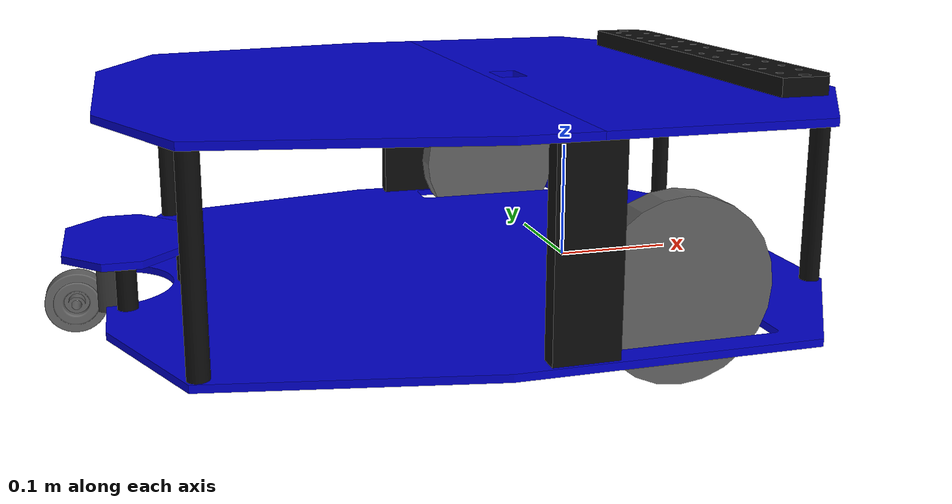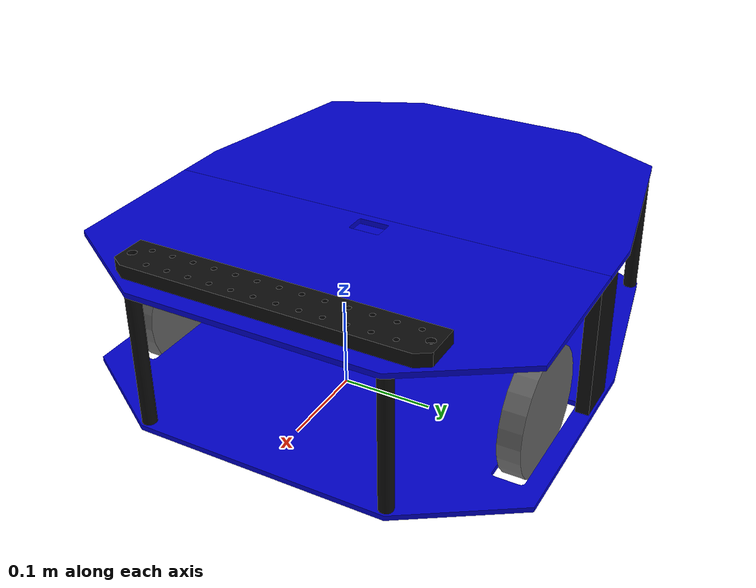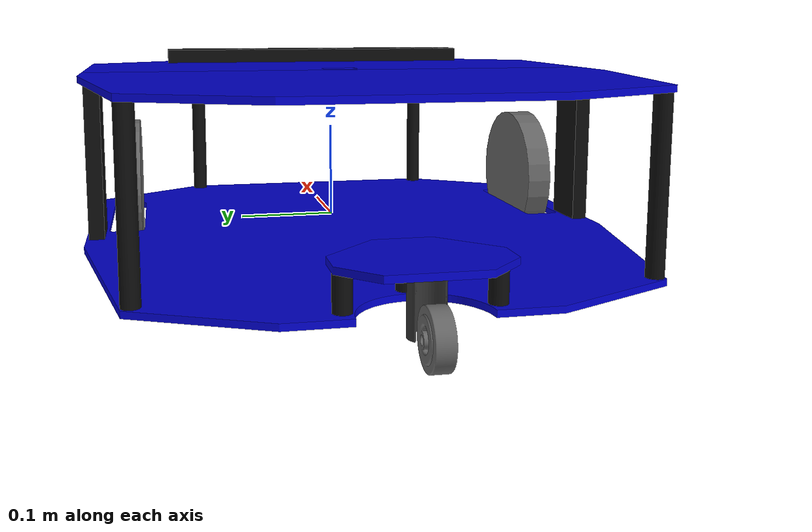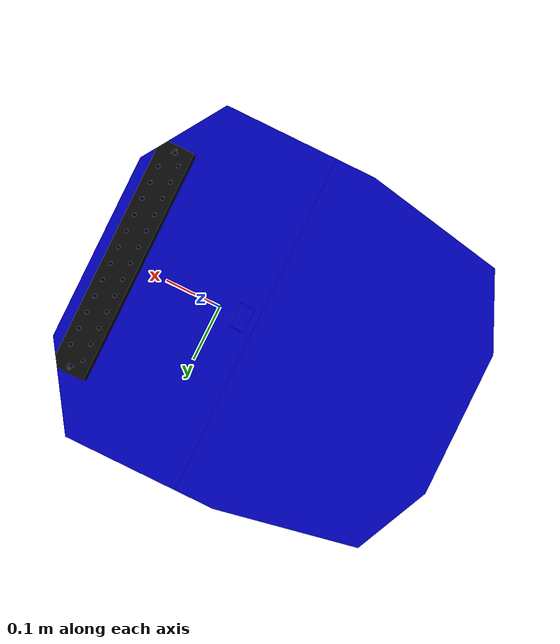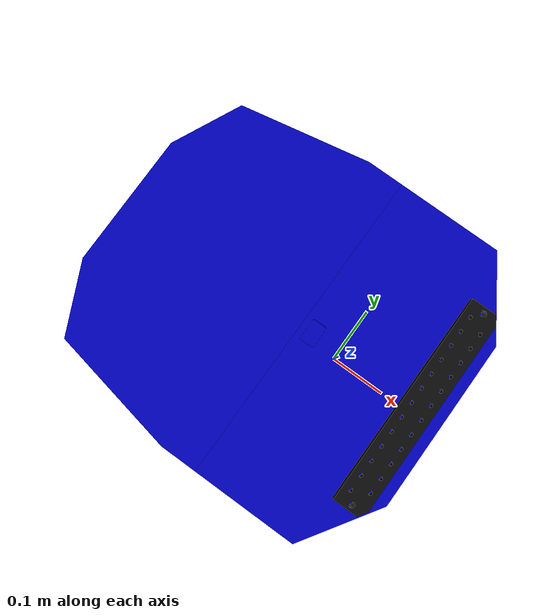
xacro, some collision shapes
<?xml version='1.0'?>
<robot name="romaa" xmlns:xacro="http://www.ros.org/wiki/xacro">

  <xacro:include filename="$(find romaa_description)/urdf/columns.xacro" />
  <xacro:include filename="$(find romaa_description)/urdf/drive_wheels.xacro" />
  <xacro:include filename="$(find romaa_description)/urdf/castor_wheel.xacro" />
  <xacro:include filename="$(find romaa_description)/urdf/romaa.gazebo" />

  <xacro:include filename="$(find romaa_description)/urdf/laser.gazebo" />
  <xacro:arg name="laser_enabled" default="false" />
  <xacro:arg name="laser_on_bar" default="false" />

  <!-- Laser rangefinder properties -->
  <xacro:property name="laser_min_dist" value="0.10" />
  <xacro:property name="laser_max_dist" value="10.0" />
  <xacro:property name="laser_samples" value="540" />
  <xacro:property name="laser_resol" value="1" />
  <xacro:property name="laser_min_angle" value="${-(3/4)*pi}" />
  <xacro:property name="laser_max_angle" value="${(3/4)*pi}" />

  <material name="blue">
    <color rgba="0 0 0.8 1" />
  </material>
  <material name="black">
    <color rgba="0.05 0.05 0.05 1" />
  </material>
  <material name="dark_gray">
    <color rgba="0.2 0.2 0.2 1" />
  </material>
  <material name="light_gray">
    <color rgba="0.4 0.4 0.4 1" />
  </material>
  <material name="gray">
    <color rgba="0.8 0.8 .8 1" />
  </material>

  <!-- Base link (bottom) -->
  <link name="base_link">
    <visual>
      <origin xyz="0 0 0" rpy="0 0 0" />
      <geometry>
        <mesh filename="package://romaa_description/meshes/romaa_bottom.stl" />
      </geometry>
      <material name="blue" />
    </visual>

    <inertial>
      <origin xyz="-0.10442512118169343 0 0.003" rpy="0 0 0" />
      <mass value="4.115922297947584"/>
      <inertia ixx="0.07709942829583775" ixy="0" ixz="0"
        iyy="0.09727669030336457" iyz="0" izz="0.17435142306541462"/>
    </inertial>

    <collision>
      <origin xyz="-0.111 0 0.003" rpy="0 0 0" />
      <geometry>
        <box size="0.570 0.520 0.006"/>
      </geometry>
    </collision>
  </link>

  <!-- Left main column -->
  <xacro:main_column name="left_column" origin_xyz="-0.0835 0.250 0.083" />
  <!-- Right main column -->
  <xacro:main_column name="right_column" origin_xyz="-0.0835 -0.250 0.083" />

  <!-- Secondary columns -->
  <xacro:secondary_column name="fleft_column" origin_xyz="0.164 0.139 0.083" />
  <xacro:secondary_column name="fright_column" origin_xyz="0.164 -0.139 0.083" />
  <xacro:secondary_column name="rleft_column" origin_xyz="-0.337 0.212 0.083" />
  <xacro:secondary_column name="rright_column" origin_xyz="-0.337 -0.212 0.083" />

  <!-- Castor support columns -->
  <xacro:castor_column name="fc_column" origin_xyz="-0.332  0    0.022815" />
  <xacro:castor_column name="lc_column" origin_xyz="-0.380 -0.06 0.022815" />
  <xacro:castor_column name="rc_column" origin_xyz="-0.380  0.06 0.022815" />

  <!-- Top-front link -->
  <link name="top_front_link">
    <visual>
      <origin xyz="0 0 0" rpy="0 0 0" />
      <geometry>
        <mesh filename="package://romaa_description/meshes/romaa_top_front.stl" />
      </geometry>
      <material name="blue" />
    </visual>

    <inertial>
      <origin xyz="0 0 0.003" rpy="0 0 0" />
      <mass value="0.7186369596364028"/>
      <inertia ixx="0.014812833616776537" ixy="0" ixz="0"
        iyy="0.003404563417864952" iyz="0" izz="0.018213085212883666"/>
    </inertial>

    <collision>
      <origin xyz="0.049 0 0.003" rpy="0 0 0" />
      <geometry>
        <box size="0.250 0.520 0.006"/>
      </geometry>
    </collision>
  </link>
  <joint name="top_front_joint" type="fixed">
    <parent link="base_link" />
    <child link="top_front_link" />
    <origin xyz="0 0 0.160" rpy="0 0 0" />
  </joint>

  <!-- Top-rear link -->
  <link name="top_rear_link">
    <visual>
      <origin xyz="0 0 0" rpy="0 0 0" />
      <geometry>
        <mesh filename="package://romaa_description/meshes/romaa_top_rear.stl" />
      </geometry>
      <material name="blue" />
    </visual>

    <inertial>
      <origin xyz="0 0 0.003" rpy="0 0 0" />
      <mass value="0.8885077118205166"/>
      <inertia ixx="0.016809690318237213" ixy="0" ixz="0"
        iyy="0.007046759808520824" iyz="0" izz="0.02385111908048711"/>
    </inertial>

    <collision>
      <origin xyz="0 0 0.003" rpy="0 0 0" />
      <geometry>
        <box size="0.320 0.520 0.006"/>
      </geometry>
    </collision>
  </link>
  <joint name="top_rear_joint" type="fixed">
    <parent link="base_link" />
    <child link="top_rear_link" />
    <origin xyz="-0.236 0 0.160" rpy="0 0 0" />
  </joint>

  <!-- Castor support link -->
  <link name="csupport_link">
    <visual>
      <origin xyz="0 0 0" rpy="0 0 0" />
      <geometry>
        <mesh filename="package://romaa_description/meshes/romaa_castor_support.stl" />
      </geometry>
      <material name="blue" />
    </visual>

    <inertial>
      <origin xyz="0.0035 0 0.003" rpy="0 0 0" />
      <mass value="0.190755"/>
      <inertia ixx="0.00023339157749999997" ixy="0" ixz="0"
        iyy="0.00014052256237261147" iyz="0" izz="0.0003727696098726115"/>
    </inertial>

    <collision>
      <origin xyz="0 0 0.003" rpy="0 0 0" />
      <geometry>
        <box size="0.105 0.140 0.006"/>
      </geometry>
    </collision>
  </link>
  <joint name="csupport_joint" type="fixed">
    <parent link="base_link" />
    <child link="csupport_link" />
    <origin xyz="-0.378 0 0.03963" rpy="0 0 0" />
  </joint>

  <!-- Battery link -->

  <!-- Sensor bar link -->
  <link name="sensbar_link">
    <visual>
      <origin xyz="0 0 0" rpy="0 0 0" />
      <geometry>
        <mesh filename="package://romaa_description/meshes/romaa_sensor_bar_with_holes.stl" />
      </geometry>
      <material name="black" />
    </visual>

    <inertial>
      <origin xyz="-0.17062558720045456 0 7.489880295179326" />
      <mass value="0.6705571211803331"/>
      <inertia ixx="0.006744639700932016" ixy="0" ixz="0"
        iyy="0.00015281269307933294" iyz="0" izz="0.006872329258775596"/>
    </inertial>

    <collision>
      <origin xyz="0 0 0" rpy="0 0 0" />
      <geometry>
        <mesh filename="package://romaa_description/meshes/romaa_sensor_bar.stl" />
      </geometry>
    </collision>
  </link>
  <joint name="sensor_bar_joint" type="fixed">
    <parent link="top_front_link" />
    <child link="sensbar_link" />
    <origin xyz="0.129 0 0.006" rpy="0 0 0" />
  </joint>

  <!-- Left drive wheel -->
  <xacro:drive_wheel name="left_wheel" reflect="1" />
  <!-- Right drive wheel -->
  <xacro:drive_wheel name="right_wheel" reflect="-1" />

  <!-- Castor wheel -->
  <xacro:castor_wheel name="castor" origin_x="-0.016" />

  <!-- Laser rangefinder sensor -->
  <xacro:if value="$(arg laser_enabled)">
    <link name="laser_link">
      <visual>
        <origin xyz="0 0 0" rpy="0 0 0" />
        <geometry>
          <mesh filename="package://romaa_description/meshes/sick_tim_1xxx.stl" />
        </geometry>
        <material name="gray" />
      </visual>
      <collision>
        <origin xyz="0 0 0" rpy="0 0 0"/>
        <geometry>
          <box size="0.05 0.05 0.07" />
        </geometry>
      </collision>
      <inertial>
        <mass value="1e-5" />
        <origin xyz="0 0 0" rpy="0 0 0"/>
        <inertia ixx="1e-6" ixy="0" ixz="0" iyy="1e-6" iyz="0" izz="1e-6" />
      </inertial>
    </link>
    <joint name="joint_laser" type="fixed" >
      <parent link="top_front_link" />
      <child link="laser_link" />
      <xacro:if value="$(arg laser_on_bar)">
        <!-- Hokuyo laser rangefinder -->
        <!-- Sick laser rangefinder -->
        <origin xyz="0.129 0 0.084" rpy="0 0 0" />
      </xacro:if>
      <xacro:unless value="$(arg laser_on_bar)">
        <!-- Hokuyo laser rangefinder -->
        <!-- Sick laser rangefinder -->
        <origin xyz="0.0 0 0.069" rpy="0 0 0" />
      </xacro:unless>
    </joint>

    <xacro:laser min_dist="${laser_min_dist}" max_dist="${laser_max_dist}" samples="${laser_samples}"
        resol="${laser_resol}" min_angle="${laser_min_angle}" max_angle="${laser_max_angle}" />
  </xacro:if>

</robot>

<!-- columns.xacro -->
<robot xmlns:xacro="http://www.ros.org/wiki/xacro">

  <xacro:property name="D" value="2700" />   <!-- [Kg/m3] -->
  <xacro:property name="h" value="0.154" />
  <xacro:property name="r" value="0.008" />
  <xacro:property name="w" value="0.050" />
  <xacro:property name="d" value="0.015" />
  <xacro:property name="c" value="0.03363" />

  <!-- Main column properties -->
  <xacro:property name="mc_volume" value="${h * w * d}" />
  <xacro:property name="mc_mass" value="${mc_volume * D}" />
  <xacro:property name="mc_ixx" value="${(1/12) * mc_mass * (d**2 + h**2)}" />
  <xacro:property name="mc_iyy" value="${(1/12) * mc_mass * (w**2 + h**2)}" />
  <xacro:property name="mc_izz" value="${(1/12) * mc_mass * (d**2 + w**2)}" />

  <!-- Secondary column properties -->
  <xacro:property name="sc_volume" value="${pi * r**2 * h}" />
  <xacro:property name="sc_mass" value="${sc_volume * D}" />
  <xacro:property name="sc_ixx_yy" value="${(1/12) * sc_mass * h**2}" />
  <xacro:property name="sc_izz" value="${(1/2) * sc_mass * r**2}" />

  <!-- Castor column properties -->
  <xacro:property name="cc_volume" value="${pi * r**2 * c}" />
  <xacro:property name="cc_mass" value="${cc_volume * D}" />
  <xacro:property name="cc_ixx_yy" value="${(1/12) * sc_mass * c**2}" />
  <xacro:property name="cc_izz" value="${(1/2) * sc_mass * r**2}" />

  <!-- Macro for robot main columns -->
  <xacro:macro name="main_column" params="name origin_xyz">
    <link name="${name}_link">
      <visual>
        <origin xyz="0 0 0" rpy="0 0 0" />
        <geometry>
          <box size="${w} ${d} ${h}" />
        </geometry>
        <material name="black" />
      </visual>
      <inertial>
        <origin xyz="0 0 ${h / 2}" rpy="0 0 0" />
        <mass value="${mc_mass}" />
        <inertia ixx="${mc_ixx}" ixy="0" ixz="0"
            iyy="${mc_iyy}" iyz="0" izz="${mc_izz}" />
      </inertial>
      <collision>
        <origin xyz="0 0 0" rpy="0 0 0" />
        <geometry>
          <box size="${w} ${d} ${h}" />
        </geometry>
      </collision>
    </link>
    <joint name="${name}_joint" type="fixed">
      <parent link="base_link" />
      <child link="${name}_link" />
      <origin xyz="${origin_xyz}" rpy="0 0 0" />
    </joint>
  </xacro:macro>

  <!-- Macro for robot secondary columns -->
  <xacro:macro name="secondary_column" params="name origin_xyz">
    <link name="${name}_link">
      <visual>
        <origin xyz="0 0 0" rpy="0 0 0" />
        <geometry>
          <cylinder length="${h}" radius="${r}" />
        </geometry>
        <material name="black" />
      </visual>
      <inertial>
        <origin xyz="0 0 ${h / 2}" rpy="0 0 0" />
        <mass value="${sc_mass}" />
        <inertia ixx="${sc_ixx_yy}" ixy="0" ixz="0"
            iyy="${sc_ixx_yy}" iyz="0" izz="${sc_izz}" />
      </inertial>
      <collision>
        <origin xyz="0 0 0" rpy="0 0 0" />
        <geometry>
          <cylinder length="${h}" radius="${r}" />
        </geometry>
      </collision>
    </link>
    <joint name="${name}_joint" type="fixed">
      <parent link="base_link" />
      <child link="${name}_link" />
      <origin xyz="${origin_xyz}" rpy="0 0 0" />
    </joint>
  </xacro:macro>

  <!-- Macro for robot castor columns -->
  <xacro:macro name="castor_column" params="name origin_xyz">
    <link name="${name}_link">
      <visual>
        <origin xyz="0 0 0" rpy="0 0 0" />
        <geometry>
          <cylinder length="${c}" radius="${r}" />
        </geometry>
        <material name="black" />
      </visual>
      <inertial>
        <origin xyz="0 0 ${c / 2}" rpy="0 0 0" />
        <mass value="${cc_mass}" />
        <inertia ixx="${cc_ixx_yy}" ixy="0" ixz="0"
            iyy="${cc_ixx_yy}" iyz="0" izz="${cc_izz}" />
      </inertial>
      <collision>
        <origin xyz="0 0 0" rpy="0 0 0" />
        <geometry>
          <cylinder length="${c}" radius="${r}" />
        </geometry>
      </collision>
    </link>
    <joint name="${name}_joint" type="fixed">
      <parent link="base_link" />
      <child link="${name}_link" />
      <origin xyz="${origin_xyz}" rpy="0 0 0" />
    </joint>
  </xacro:macro>

</robot>

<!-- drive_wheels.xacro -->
<robot xmlns:xacro="http://www.ros.org/wiki/xacro">

  <!-- Robot properties -->
  <xacro:property name="wheelbase" value="0.440" />
  <xacro:property name="wheel_radius" value="0.070" />
  <xacro:property name="wheel_thickness" value="0.025" />
  <!-- z_sep = 35mm + 6mm -->
  <xacro:property name="wheel_zsep" value="0.041" />

  <!-- Macro for robot wheels -->
  <xacro:macro name="drive_wheel" params="name reflect">
    <link name="${name}_link">
      <visual>
        <origin xyz="0 0 0" rpy="${pi / 2} 0 0" />
        <geometry>
          <mesh filename="package://romaa_description/meshes/romaa_drive_wheel.stl" />
        </geometry>
        <material name="light_gray" />
      </visual>
      <inertial>
        <origin xyz="0 0 0" rpy="${pi / 2} 0 0" />
        <mass value="0.200" />
        <inertia ixx="0.0003179237060191715" ixy="0" ixz="0"
            iyy="0.00031792370601916626" iyz="0" izz="0.0006167682575358206" />
      </inertial>
      <collision>
        <origin xyz="0 0 0" rpy="${pi / 2} 0 0" />
        <geometry>
          <cylinder length="${wheel_thickness}" radius="${wheel_radius}" />
        </geometry>
      </collision>
    </link>
    <joint name="${name}_joint" type="continuous">
      <dynamics damping="0.1" friction="0.5" />
      <origin xyz="0 ${reflect * wheelbase / 2} ${wheel_zsep}" rpy="0 0 0" />
      <parent link="base_link" />
      <child link="${name}_link" />
      <axis xyz="0 1 0" />
    </joint>
  </xacro:macro>

</robot>

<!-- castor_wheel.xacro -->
<robot xmlns:xacro="http://www.ros.org/wiki/xacro">

  <xacro:property name="b1_L" value="0.05" />
  <xacro:property name="b1_H" value="0.0015" />
  <xacro:property name="csupport_H" value="0.06863" />
  <xacro:property name="b2_H" value="0.050" />
  <xacro:property name="R_rueda" value="0.0245" />
  <xacro:property name="z" value="${csupport_H - (b2_H/2) - b1_H - R_rueda}" />

  <!-- Macro for castor wheel -->
  <xacro:macro name="castor_wheel" params="name origin_x">
    <!-- Castor wheel base (cube) -->
    <link name="${name}_b1_link">
      <visual>
        <origin xyz="0 0 0" rpy="0 0 0" />
        <geometry>
          <box size="${b1_L} ${b1_L} ${b1_H}" />
        </geometry>
        <material name="dark_gray" />
      </visual>
      <inertial>
        <origin xyz="0 0 0" rpy="0 0 0" />
        <mass value="0.028125" />
        <inertia ixx="5.864648437499999e-06" ixy="0" ixz="0"
            iyy="5.864648437499999e-06" iyz="0" izz="1.1718749999999999e-05" />
      </inertial>
      <collision>
        <origin xyz="0 0 0" rpy="0 0 0" />
        <geometry>
          <box size="0.05 0.05 0.0015" />
        </geometry>
      </collision>
    </link>
    <joint name="${name}_b1_joint" type="fixed">
      <origin xyz="${origin_x} 0 -${b1_H / 2}" rpy="0 0 0" />
      <parent link="csupport_link" />
      <child link="${name}_b1_link" />
    </joint>

    <!-- Castor wheel base (cylinder) -->
    <link name="${name}_b2_link">
      <visual>
        <origin xyz="0 0 0" rpy="0 0 0" />
        <geometry>
          <mesh filename="package://romaa_description/meshes/romaa_castor_cylinder.stl" />
        </geometry>
        <material name="dark_gray" />
      </visual>
      <inertial>
        <origin xyz="0.0048464279113944195 0 0" rpy="0 0 0" />
        <mass value="0.03629327674887137" />
        <inertia ixx="1.2058314484155499e-05" ixy="0" ixz="0"
            iyy="9.601587537327375e-06" iyz="0" izz="6.537703376119888e-06" />
      </inertial>
      <collision>
        <origin xyz="0 0 0" rpy="0 0 0" />
        <geometry>
          <cylinder length="${b2_H}" radius="0.030" />
        </geometry>
      </collision>
    </link>
    <joint name="${name}_rot1_joint" type="continuous">
      <dynamics damping="0.0" friction="0.5" />
      <origin xyz="0 0 -${(b1_H/2) + (b2_H/2)}" rpy="0 0 0" />
      <parent link="${name}_b1_link" />
      <child link="${name}_b2_link" />
      <axis xyz="0 0 1" />
    </joint>

    <!-- Castor wheel -->
    <link name="${name}_link">
      <visual>
        <origin xyz="0 0 0" rpy="0 0 0" />
        <geometry>
          <mesh filename="package://romaa_description/meshes/romaa_castor_wheel.stl" />
        </geometry>
        <material name="light_gray" />
      </visual>
      <inertial>
        <origin xyz="0 0 0" rpy="${pi / 2} 0 0" />
        <mass value="0.0233673699785761" />
        <inertia ixx="4.260422817439314e-06" ixy="0" ixz="0"
            iyy="7.362120181084859e-06" iyz="0" izz="4.260422817439261e-06" />
      </inertial>
      <collision>
        <origin xyz="0 0 0" rpy="${pi / 2} 0 0" />
        <geometry>
          <cylinder length="0.016" radius="0.0245" />
        </geometry>
      </collision>
    </link>
    <joint name="${name}_rot2_joint" type="continuous">
      <dynamics damping="0.0" friction="0.5" />
      <origin xyz="-0.026 0 -${z}" rpy="0 0 0" />
      <parent link="${name}_b2_link" />
      <child link="${name}_link" />
      <axis xyz="0 1 0" />
    </joint>
  </xacro:macro>

</robot>
